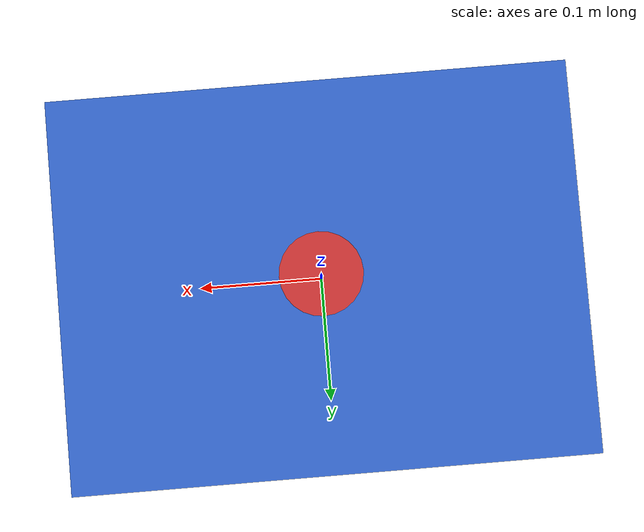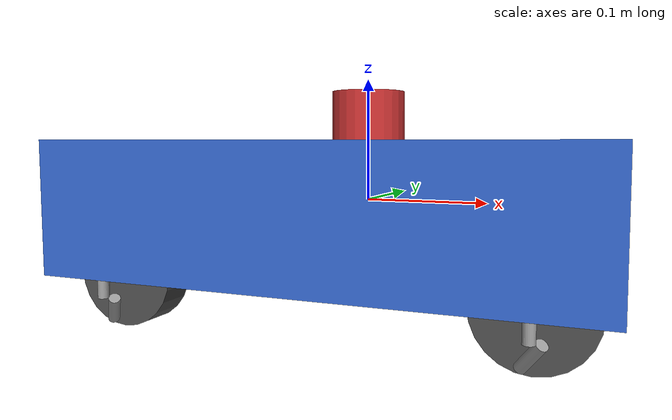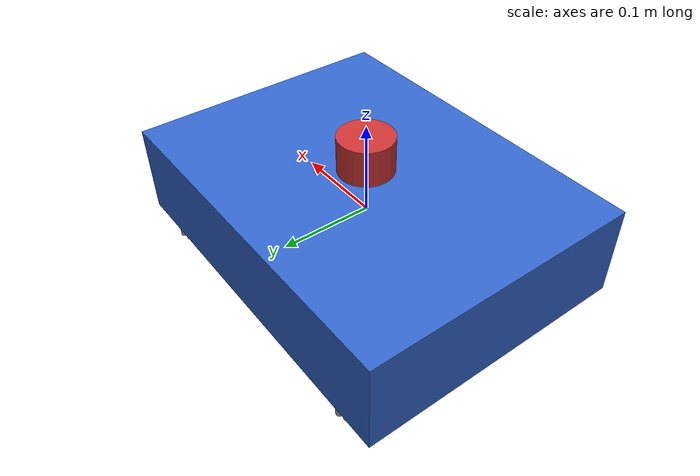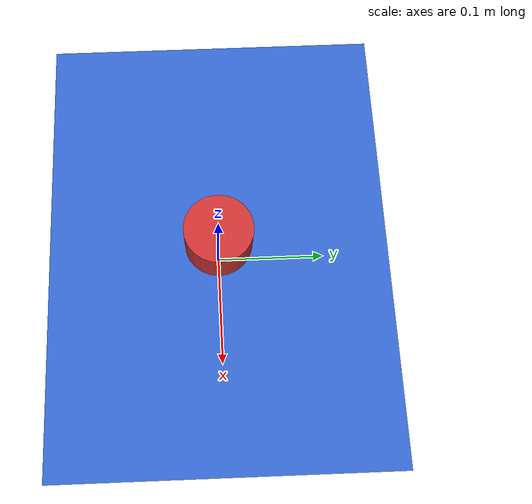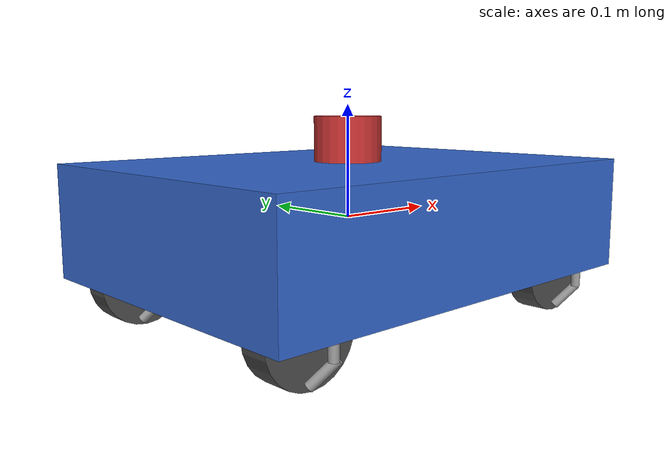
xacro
<?xml version="1.0"?>
<robot name="agv_mecanum" xmlns:xacro="http://www.ros.org/wiki/xacro">

  <xacro:arg name="use_gazebo" default="true"/>

  <!-- Include property definitions -->
  <xacro:include filename="$(find agv_mecanum_description)/urdf/agv_properties.xacro"/>
  <xacro:include filename="$(find agv_mecanum_description)/urdf/mecanum_wheel.xacro"/>
  <xacro:include filename="$(find agv_mecanum_description)/urdf/sensors.xacro"/>
  <xacro:include filename="$(find agv_mecanum_description)/urdf/ros2_control.xacro"/>

  <!-- ========== Base Link ========== -->
  <link name="base_link">
    <visual>
      <origin xyz="0 0 0" rpy="0 0 0"/>
      <geometry>
        <box size="${base_x} ${base_y} ${base_z}"/>
      </geometry>
      <material name="base_mat">
        <color rgba="0.2 0.4 0.8 1.0"/>
      </material>
    </visual>
    <collision>
      <origin xyz="0 0 0" rpy="0 0 0"/>
      <geometry>
        <box size="${base_x} ${base_y} ${base_z}"/>
      </geometry>
    </collision>
    <inertial>
      <mass value="${base_mass}"/>
      <inertia ixx="${base_ixx}" ixy="0" ixz="0"
               iyy="${base_iyy}" iyz="0" izz="${base_izz}"/>
    </inertial>
  </link>

  <!-- ========== 4 Mecanum Wheels ========== -->
  <!-- Mecanum arrangement: ◣◥ / ◤◢ -->
  <!-- Front-left and rear-right: yaw=0 (rollers at +45°) -->
  <!-- Front-right and rear-left: yaw=PI (rollers at -45°) -->
  <xacro:mecanum_wheel prefix="front_left"  parent_link="base_link"
    x="${lx}"  y="${ly}"   z="${-base_z/2}" yaw="0"/>
  <xacro:mecanum_wheel prefix="front_right" parent_link="base_link"
    x="${lx}"  y="${-ly}"  z="${-base_z/2}" yaw="${PI}"/>
  <xacro:mecanum_wheel prefix="rear_left"   parent_link="base_link"
    x="${-lx}" y="${ly}"   z="${-base_z/2}" yaw="${PI}"/>
  <xacro:mecanum_wheel prefix="rear_right"  parent_link="base_link"
    x="${-lx}" y="${-ly}"  z="${-base_z/2}" yaw="0"/>

  <!-- ========== Sensors ========== -->
  <xacro:lidar_sensor parent_link="base_link"
    z_offset="${base_z/2 + lidar_height}"/>
  <xacro:imu_sensor parent_link="base_link"
    z_offset="${base_z/2 - 0.01}"/>

  <!-- ========== ros2_control (Gazebo) ========== -->
  <xacro:if value="$(arg use_gazebo)">
    <xacro:ros2_control_gazebo/>
  </xacro:if>

</robot>

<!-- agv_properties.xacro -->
<robot xmlns:xacro="http://www.ros.org/wiki/xacro">

  <!-- ========== Constants ========== -->
  <xacro:property name="PI" value="3.14159265358979"/>

  <!-- ========== Base Link Properties ========== -->
  <xacro:property name="base_x" value="0.40"/>   <!-- length -->
  <xacro:property name="base_y" value="0.30"/>   <!-- width -->
  <xacro:property name="base_z" value="0.10"/>   <!-- height -->
  <xacro:property name="base_mass" value="10.0"/>

  <!-- Box inertia: Ixx = m/12*(y^2+z^2), etc. -->
  <xacro:property name="base_ixx" value="${base_mass/12 * (base_y*base_y + base_z*base_z)}"/>
  <xacro:property name="base_iyy" value="${base_mass/12 * (base_x*base_x + base_z*base_z)}"/>
  <xacro:property name="base_izz" value="${base_mass/12 * (base_x*base_x + base_y*base_y)}"/>

  <!-- ========== Mecanum Wheel Properties ========== -->
  <xacro:property name="wheel_radius" value="0.04"/>
  <xacro:property name="wheel_width" value="0.025"/>
  <xacro:property name="wheel_mass" value="0.2"/>

  <!-- Cylinder inertia for wheel: Ixx = m/12*(3r^2+h^2), Iyy = m/2*r^2 -->
  <xacro:property name="wheel_ixx" value="${wheel_mass/12 * (3*wheel_radius*wheel_radius + wheel_width*wheel_width)}"/>
  <xacro:property name="wheel_iyy" value="${wheel_mass/2 * wheel_radius * wheel_radius}"/>
  <xacro:property name="wheel_izz" value="${wheel_mass/12 * (3*wheel_radius*wheel_radius + wheel_width*wheel_width)}"/>

  <!-- ========== Wheel Positions ========== -->
  <!-- Half wheelbase (center to front/rear axle) -->
  <xacro:property name="lx" value="0.15"/>
  <!-- Half track (center to left/right wheel) -->
  <xacro:property name="ly" value="0.11"/>
  <!-- Key parameter for mecanum_drive_controller -->
  <xacro:property name="sum_xy" value="${lx + ly}"/>

  <!-- ========== Sensor Properties ========== -->
  <xacro:property name="lidar_height" value="0.02"/>
  <xacro:property name="lidar_radius" value="0.03"/>
  <xacro:property name="lidar_length" value="0.04"/>

</robot>

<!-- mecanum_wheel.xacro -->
<robot xmlns:xacro="http://www.ros.org/wiki/xacro">

  <xacro:macro name="mecanum_wheel" params="prefix parent_link x y z yaw">

    <!-- Wheel link -->
    <link name="${prefix}_wheel_link">
      <!-- Hub: cylinder rotated 90° around X to stand upright -->
      <!-- After rotation: cylinder axis along Y, flat faces left/right -->
      <visual>
        <origin xyz="0 0 0" rpy="${PI/2} 0 0"/>
        <geometry>
          <cylinder radius="${wheel_radius}" length="${wheel_width}"/>
        </geometry>
        <material name="${prefix}_wheel_mat">
          <color rgba="0.3 0.3 0.3 1.0"/>
        </material>
      </visual>

      <!-- Roller visuals: 8 small cylinders around the standing wheel rim -->
      <!-- Each roller at angle θ on the rim, tilted 45° from Y axis -->
      <xacro:macro name="roller" params="angle">
        <visual>
          <origin xyz="0 ${wheel_radius * 0.85 * cos(angle)} ${wheel_radius * 0.85 * sin(angle)}"
                  rpy="${angle} 0 ${PI/4}"/>
          <geometry>
            <cylinder radius="0.004" length="${wheel_width * 1.1}"/>
          </geometry>
          <material name="roller_mat">
            <color rgba="0.6 0.6 0.6 1.0"/>
          </material>
        </visual>
      </xacro:macro>

      <xacro:roller angle="${0}"/>
      <xacro:roller angle="${PI/4}"/>
      <xacro:roller angle="${PI/2}"/>
      <xacro:roller angle="${3*PI/4}"/>
      <xacro:roller angle="${PI}"/>
      <xacro:roller angle="${5*PI/4}"/>
      <xacro:roller angle="${3*PI/2}"/>
      <xacro:roller angle="${7*PI/4}"/>

      <!-- Collision: also rotated to match visual -->
      <collision>
        <origin xyz="0 0 0" rpy="${PI/2} 0 0"/>
        <geometry>
          <cylinder radius="${wheel_radius}" length="${wheel_width}"/>
        </geometry>
      </collision>

      <inertial>
        <mass value="${wheel_mass}"/>
        <inertia ixx="${wheel_ixx}" ixy="0" ixz="0"
                 iyy="${wheel_iyy}" iyz="0" izz="${wheel_izz}"/>
      </inertial>
    </link>

    <!-- Wheel joint: continuous, rotates around Y axis -->
    <joint name="${prefix}_wheel_joint" type="continuous">
      <parent link="${parent_link}"/>
      <child link="${prefix}_wheel_link"/>
      <origin xyz="${x} ${y} ${z}" rpy="0 0 ${yaw}"/>
      <axis xyz="0 1 0"/>
      <limit effort="10" velocity="10"/>
    </joint>

  </xacro:macro>

</robot>

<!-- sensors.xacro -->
<robot xmlns:xacro="http://www.ros.org/wiki/xacro">

  <!-- ========== 360° LiDAR Sensor ========== -->
  <xacro:macro name="lidar_sensor" params="parent_link z_offset">

    <link name="base_laser_link">
      <visual>
        <origin xyz="0 0 0" rpy="0 0 0"/>
        <geometry>
          <cylinder radius="${lidar_radius}" length="${lidar_length}"/>
        </geometry>
        <material name="lidar_mat">
          <color rgba="0.8 0.2 0.2 1.0"/>
        </material>
      </visual>
      <collision>
        <origin xyz="0 0 0" rpy="0 0 0"/>
        <geometry>
          <cylinder radius="${lidar_radius}" length="${lidar_length}"/>
        </geometry>
      </collision>
      <inertial>
        <mass value="0.1"/>
        <inertia ixx="0.0001" ixy="0" ixz="0" iyy="0.0001" iyz="0" izz="0.0001"/>
      </inertial>
    </link>

    <joint name="base_laser_joint" type="fixed">
      <parent link="${parent_link}"/>
      <child link="base_laser_link"/>
      <origin xyz="0 0 ${z_offset}" rpy="0 0 0"/>
    </joint>

    <gazebo reference="base_laser_link">
      <sensor name="lidar" type="gpu_lidar">
        <always_on>true</always_on>
        <update_rate>10</update_rate>
        <visualize>true</visualize>
        <gz_frame_id>base_laser_link</gz_frame_id>
        <topic>/scan</topic>
        <lidar>
          <scan>
            <horizontal>
              <samples>180</samples>
              <resolution>1</resolution>
              <min_angle>-3.14159</min_angle>
              <max_angle>3.14159</max_angle>
            </horizontal>
          </scan>
          <range>
            <min>0.1</min>
            <max>50.0</max>
            <resolution>0.01</resolution>
          </range>
        </lidar>
      </sensor>
    </gazebo>

    <gazebo reference="base_laser_joint">
      <preserveFixedJoint>true</preserveFixedJoint>
    </gazebo>

  </xacro:macro>

  <!-- ========== IMU Sensor ========== -->
  <xacro:macro name="imu_sensor" params="parent_link z_offset">

    <link name="imu_link">
      <visual>
        <origin xyz="0 0 0" rpy="0 0 0"/>
        <geometry>
          <box size="0.04 0.04 0.02"/>
        </geometry>
        <material name="imu_mat">
          <color rgba="0.1 0.1 0.1 1.0"/>
        </material>
      </visual>
      <inertial>
        <mass value="0.05"/>
        <inertia ixx="0.00001" ixy="0" ixz="0" iyy="0.00001" iyz="0" izz="0.00001"/>
      </inertial>
    </link>

    <joint name="imu_joint" type="fixed">
      <parent link="${parent_link}"/>
      <child link="imu_link"/>
      <origin xyz="0 0 ${z_offset}" rpy="0 0 0"/>
    </joint>

    <gazebo reference="imu_link">
      <sensor name="imu" type="imu">
        <always_on>true</always_on>
        <update_rate>100</update_rate>
        <gz_frame_id>imu_link</gz_frame_id>
        <topic>/imu</topic>
      </sensor>
    </gazebo>

    <gazebo reference="imu_joint">
      <preserveFixedJoint>true</preserveFixedJoint>
    </gazebo>

  </xacro:macro>

</robot>
